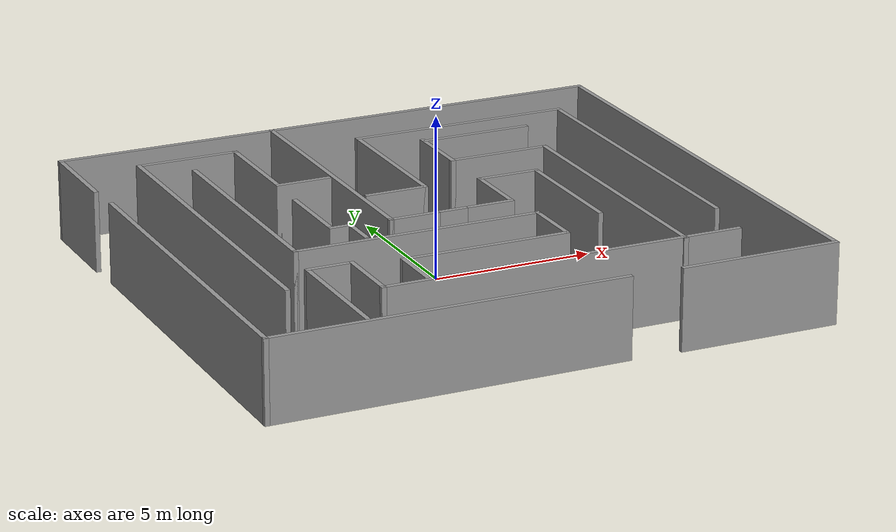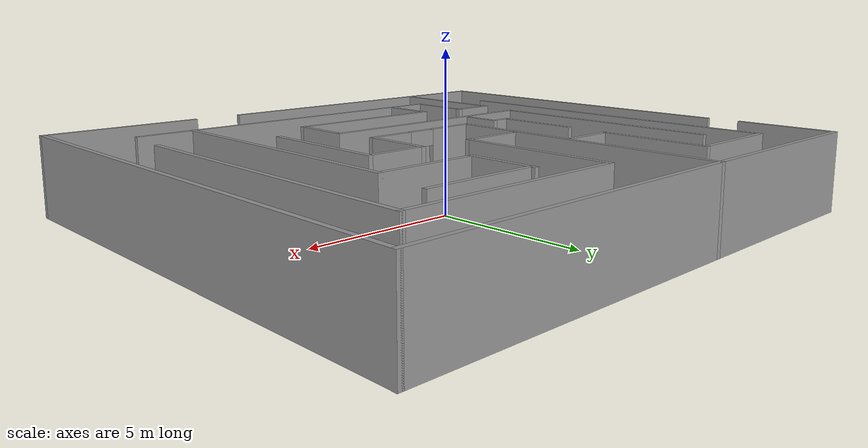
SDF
<?xml version='1.0'?>
<sdf version='1.7'>
  <model name='maze.world'>
    <pose>-0.047283 -0.120365 0 0 -0 0</pose>
    <link name='Wall_11'>
      <pose>0.053394 -0.925 0 0 -0 0</pose>
      <visual name='Wall_11_Visual_0'>
        <pose>-1.20024 0 1.25 0 -0 0</pose>
        <geometry>
          <box>
            <size>1.59951 0.15 2.5</size>
          </box>
        </geometry>
        <material>
          <script>
            <uri>file://media/materials/scripts/gazebo.material</uri>
            <name>Gazebo/Grey</name>
          </script>
          <ambient>1 1 1 1</ambient>
        </material>
        <meta>
          <layer>0</layer>
        </meta>
      </visual>
      <collision name='Wall_11_Collision_0'>
        <geometry>
          <box>
            <size>1.59951 0.15 2.5</size>
          </box>
        </geometry>
        <pose>-1.20024 0 1.25 0 -0 0</pose>
      </collision>
      <visual name='Wall_11_Visual_1'>
        <pose>1.24976 0 1.25 0 -0 0</pose>
        <geometry>
          <box>
            <size>1.50049 0.15 2.5</size>
          </box>
        </geometry>
        <material>
          <script>
            <uri>file://media/materials/scripts/gazebo.material</uri>
            <name>Gazebo/Grey</name>
          </script>
          <ambient>1 1 1 1</ambient>
        </material>
        <meta>
          <layer>0</layer>
        </meta>
      </visual>
      <collision name='Wall_11_Collision_1'>
        <geometry>
          <box>
            <size>1.50049 0.15 2.5</size>
          </box>
        </geometry>
        <pose>1.24976 0 1.25 0 -0 0</pose>
      </collision>
      <visual name='Wall_11_Visual_2'>
        <pose>0.049511 0 2.25 0 -0 0</pose>
        <geometry>
          <box>
            <size>0.9 0.15 0.5</size>
          </box>
        </geometry>
        <material>
          <script>
            <uri>file://media/materials/scripts/gazebo.material</uri>
            <name>Gazebo/Grey</name>
          </script>
          <ambient>1 1 1 1</ambient>
        </material>
        <meta>
          <layer>0</layer>
        </meta>
      </visual>
      <collision name='Wall_11_Collision_2'>
        <geometry>
          <box>
            <size>0.9 0.15 0.5</size>
          </box>
        </geometry>
        <pose>0.049511 0 2.25 0 -0 0</pose>
      </collision>
    </link>
    <link name='Wall_12'>
      <collision name='Wall_12_Collision'>
        <geometry>
          <box>
            <size>2.25 0.15 2.5</size>
          </box>
        </geometry>
        <pose>0 0 1.25 0 -0 0</pose>
      </collision>
      <visual name='Wall_12_Visual'>
        <pose>0 0 1.25 0 -0 0</pose>
        <geometry>
          <box>
            <size>2.25 0.15 2.5</size>
          </box>
        </geometry>
        <material>
          <script>
            <uri>file://media/materials/scripts/gazebo.material</uri>
            <name>Gazebo/Grey</name>
          </script>
          <ambient>1 1 1 1</ambient>
        </material>
        <meta>
          <layer>0</layer>
        </meta>
      </visual>
      <pose>1.97839 0.125 0 0 -0 1.5708</pose>
    </link>
    <link name='Wall_13'>
      <collision name='Wall_13_Collision'>
        <geometry>
          <box>
            <size>2 0.15 2.5</size>
          </box>
        </geometry>
        <pose>0 0 1.25 0 -0 0</pose>
      </collision>
      <visual name='Wall_13_Visual'>
        <pose>0 0 1.25 0 -0 0</pose>
        <geometry>
          <box>
            <size>2 0.15 2.5</size>
          </box>
        </geometry>
        <material>
          <script>
            <uri>file://media/materials/scripts/gazebo.material</uri>
            <name>Gazebo/Grey</name>
          </script>
          <ambient>1 1 1 1</ambient>
        </material>
        <meta>
          <layer>0</layer>
        </meta>
      </visual>
      <pose>2.90339 1.175 0 0 -0 0</pose>
    </link>
    <link name='Wall_14'>
      <collision name='Wall_14_Collision'>
        <geometry>
          <box>
            <size>4.25 0.15 2.5</size>
          </box>
        </geometry>
        <pose>0 0 1.25 0 -0 0</pose>
      </collision>
      <visual name='Wall_14_Visual'>
        <pose>0 0 1.25 0 -0 0</pose>
        <geometry>
          <box>
            <size>4.25 0.15 2.5</size>
          </box>
        </geometry>
        <material>
          <script>
            <uri>file://media/materials/scripts/gazebo.material</uri>
            <name>Gazebo/Grey</name>
          </script>
          <ambient>1 1 1 1</ambient>
        </material>
        <meta>
          <layer>0</layer>
        </meta>
      </visual>
      <pose>3.82839 -0.875 0 0 -0 -1.5708</pose>
    </link>
    <link name='Wall_16'>
      <collision name='Wall_16_Collision'>
        <geometry>
          <box>
            <size>9 0.15 2.5</size>
          </box>
        </geometry>
        <pose>0 0 1.25 0 -0 0</pose>
      </collision>
      <visual name='Wall_16_Visual'>
        <pose>0 0 1.25 0 -0 0</pose>
        <geometry>
          <box>
            <size>9 0.15 2.5</size>
          </box>
        </geometry>
        <material>
          <script>
            <uri>file://media/materials/scripts/gazebo.material</uri>
            <name>Gazebo/Grey</name>
          </script>
          <ambient>1 1 1 1</ambient>
        </material>
        <meta>
          <layer>0</layer>
        </meta>
      </visual>
      <pose>-1.87161 3.5 0 0 -0 1.5708</pose>
    </link>
    <link name='Wall_17'>
      <collision name='Wall_17_Collision'>
        <geometry>
          <box>
            <size>10.75 0.15 2.5</size>
          </box>
        </geometry>
        <pose>0 0 1.25 0 -0 0</pose>
      </collision>
      <visual name='Wall_17_Visual'>
        <pose>0 0 1.25 0 -0 0</pose>
        <geometry>
          <box>
            <size>10.75 0.15 2.5</size>
          </box>
        </geometry>
        <material>
          <script>
            <uri>file://media/materials/scripts/gazebo.material</uri>
            <name>Gazebo/Grey</name>
          </script>
          <ambient>1 1 1 1</ambient>
        </material>
        <meta>
          <layer>0</layer>
        </meta>
      </visual>
      <pose>3.42839 7.925 0 0 -0 0</pose>
    </link>
    <link name='Wall_18'>
      <collision name='Wall_18_Collision'>
        <geometry>
          <box>
            <size>16 0.15 2.5</size>
          </box>
        </geometry>
        <pose>0 0 1.25 0 -0 0</pose>
      </collision>
      <visual name='Wall_18_Visual'>
        <pose>0 0 1.25 0 -0 0</pose>
        <geometry>
          <box>
            <size>16 0.15 2.5</size>
          </box>
        </geometry>
        <material>
          <script>
            <uri>file://media/materials/scripts/gazebo.material</uri>
            <name>Gazebo/Grey</name>
          </script>
          <ambient>1 1 1 1</ambient>
        </material>
        <meta>
          <layer>0</layer>
        </meta>
      </visual>
      <pose>8.72839 0 0 0 -0 -1.5708</pose>
    </link>
    <link name='Wall_19'>
      <collision name='Wall_19_Collision'>
        <geometry>
          <box>
            <size>5 0.15 2.5</size>
          </box>
        </geometry>
        <pose>0 0 1.25 0 -0 0</pose>
      </collision>
      <visual name='Wall_19_Visual'>
        <pose>0 0 1.25 0 -0 0</pose>
        <geometry>
          <box>
            <size>5 0.15 2.5</size>
          </box>
        </geometry>
        <material>
          <script>
            <uri>file://media/materials/scripts/gazebo.material</uri>
            <name>Gazebo/Grey</name>
          </script>
          <ambient>1 1 1 1</ambient>
        </material>
        <meta>
          <layer>0</layer>
        </meta>
      </visual>
      <pose>6.30339 -7.925 0 0 -0 3.14159</pose>
    </link>
    <link name='Wall_22'>
      <collision name='Wall_22_Collision'>
        <geometry>
          <box>
            <size>11 0.15 2.5</size>
          </box>
        </geometry>
        <pose>0 0 1.25 0 -0 0</pose>
      </collision>
      <visual name='Wall_22_Visual'>
        <pose>0 0 1.25 0 -0 0</pose>
        <geometry>
          <box>
            <size>11 0.15 2.5</size>
          </box>
        </geometry>
        <material>
          <script>
            <uri>file://media/materials/scripts/gazebo.material</uri>
            <name>Gazebo/Grey</name>
          </script>
          <ambient>1 1 1 1</ambient>
        </material>
        <meta>
          <layer>0</layer>
        </meta>
      </visual>
      <pose>-3.23039 -7.86248 0 0 -0 3.14159</pose>
    </link>
    <link name='Wall_23'>
      <collision name='Wall_23_Collision'>
        <geometry>
          <box>
            <size>11.75 0.15 2.5</size>
          </box>
        </geometry>
        <pose>0 0 1.25 0 -0 0</pose>
      </collision>
      <visual name='Wall_23_Visual'>
        <pose>0 0 1.25 0 -0 0</pose>
        <geometry>
          <box>
            <size>11.75 0.15 2.5</size>
          </box>
        </geometry>
        <material>
          <script>
            <uri>file://media/materials/scripts/gazebo.material</uri>
            <name>Gazebo/Grey</name>
          </script>
          <ambient>1 1 1 1</ambient>
        </material>
        <meta>
          <layer>0</layer>
        </meta>
      </visual>
      <pose>-8.65539 -2.06248 0 0 -0 1.5708</pose>
    </link>
    <link name='Wall_25'>
      <collision name='Wall_25_Collision'>
        <geometry>
          <box>
            <size>3 0.15 2.5</size>
          </box>
        </geometry>
        <pose>0 0 1.25 0 -0 0</pose>
      </collision>
      <visual name='Wall_25_Visual'>
        <pose>0 0 1.25 0 -0 0</pose>
        <geometry>
          <box>
            <size>3 0.15 2.5</size>
          </box>
        </geometry>
        <material>
          <script>
            <uri>file://media/materials/scripts/gazebo.material</uri>
            <name>Gazebo/Grey</name>
          </script>
          <ambient>1 1 1 1</ambient>
        </material>
        <meta>
          <layer>0</layer>
        </meta>
      </visual>
      <pose>-8.7284 6.34648 0 0 -0 1.5708</pose>
    </link>
    <link name='Wall_27'>
      <collision name='Wall_27_Collision'>
        <geometry>
          <box>
            <size>7 0.15 2.5</size>
          </box>
        </geometry>
        <pose>0 0 1.25 0 -0 0</pose>
      </collision>
      <visual name='Wall_27_Visual'>
        <pose>0 0 1.25 0 -0 0</pose>
        <geometry>
          <box>
            <size>7 0.15 2.5</size>
          </box>
        </geometry>
        <material>
          <script>
            <uri>file://media/materials/scripts/gazebo.material</uri>
            <name>Gazebo/Grey</name>
          </script>
          <ambient>1 1 1 1</ambient>
        </material>
        <meta>
          <layer>0</layer>
        </meta>
      </visual>
      <pose>-5.29661 7.925 0 0 -0 3.14159</pose>
    </link>
    <link name='Wall_29'>
      <collision name='Wall_29_Collision'>
        <geometry>
          <box>
            <size>11.25 0.15 2.5</size>
          </box>
        </geometry>
        <pose>0 0 1.25 0 -0 0</pose>
      </collision>
      <visual name='Wall_29_Visual'>
        <pose>0 0 1.25 0 -0 0</pose>
        <geometry>
          <box>
            <size>11.25 0.15 2.5</size>
          </box>
        </geometry>
        <material>
          <script>
            <uri>file://media/materials/scripts/gazebo.material</uri>
            <name>Gazebo/Grey</name>
          </script>
          <ambient>1 1 1 1</ambient>
        </material>
        <meta>
          <layer>0</layer>
        </meta>
      </visual>
      <pose>1.25655 -5.75879 0 0 -0 3.14159</pose>
    </link>
    <link name='Wall_30'>
      <collision name='Wall_30_Collision'>
        <geometry>
          <box>
            <size>2.25 0.15 2.5</size>
          </box>
        </geometry>
        <pose>0 0 1.25 0 -0 0</pose>
      </collision>
      <visual name='Wall_30_Visual'>
        <pose>0 0 1.25 0 -0 0</pose>
        <geometry>
          <box>
            <size>2.25 0.15 2.5</size>
          </box>
        </geometry>
        <material>
          <script>
            <uri>file://media/materials/scripts/gazebo.material</uri>
            <name>Gazebo/Grey</name>
          </script>
          <ambient>1 1 1 1</ambient>
        </material>
        <meta>
          <layer>0</layer>
        </meta>
      </visual>
      <pose>-4.29345 -4.70879 0 0 -0 1.5708</pose>
    </link>
    <link name='Wall_32'>
      <collision name='Wall_32_Collision'>
        <geometry>
          <box>
            <size>7 0.15 2.5</size>
          </box>
        </geometry>
        <pose>0 0 1.25 0 -0 0</pose>
      </collision>
      <visual name='Wall_32_Visual'>
        <pose>0 0 1.25 0 -0 0</pose>
        <geometry>
          <box>
            <size>7 0.15 2.5</size>
          </box>
        </geometry>
        <material>
          <script>
            <uri>file://media/materials/scripts/gazebo.material</uri>
            <name>Gazebo/Grey</name>
          </script>
          <ambient>1 1 1 1</ambient>
        </material>
        <meta>
          <layer>0</layer>
        </meta>
      </visual>
      <pose>3.63729 6.09469 0 0 -0 0</pose>
    </link>
    <link name='Wall_33'>
      <collision name='Wall_33_Collision'>
        <geometry>
          <box>
            <size>10.25 0.15 2.5</size>
          </box>
        </geometry>
        <pose>0 0 1.25 0 -0 0</pose>
      </collision>
      <visual name='Wall_33_Visual'>
        <pose>0 0 1.25 0 -0 0</pose>
        <geometry>
          <box>
            <size>10.25 0.15 2.5</size>
          </box>
        </geometry>
        <material>
          <script>
            <uri>file://media/materials/scripts/gazebo.material</uri>
            <name>Gazebo/Grey</name>
          </script>
          <ambient>1 1 1 1</ambient>
        </material>
        <meta>
          <layer>0</layer>
        </meta>
      </visual>
      <pose>7.06229 1.04469 0 0 -0 -1.5708</pose>
    </link>
    <link name='Wall_36'>
      <collision name='Wall_36_Collision'>
        <geometry>
          <box>
            <size>5 0.15 2.5</size>
          </box>
        </geometry>
        <pose>0 0 1.25 0 -0 0</pose>
      </collision>
      <visual name='Wall_36_Visual'>
        <pose>0 0 1.25 0 -0 0</pose>
        <geometry>
          <box>
            <size>5 0.15 2.5</size>
          </box>
        </geometry>
        <material>
          <script>
            <uri>file://media/materials/scripts/gazebo.material</uri>
            <name>Gazebo/Grey</name>
          </script>
          <ambient>1 1 1 1</ambient>
        </material>
        <meta>
          <layer>0</layer>
        </meta>
      </visual>
      <pose>0.212287 3.66969 0 0 -0 -1.5708</pose>
    </link>
    <link name='Wall_37'>
      <collision name='Wall_37_Collision'>
        <geometry>
          <box>
            <size>2 0.15 2.5</size>
          </box>
        </geometry>
        <pose>0 0 1.25 0 -0 0</pose>
      </collision>
      <visual name='Wall_37_Visual'>
        <pose>0 0 1.25 0 -0 0</pose>
        <geometry>
          <box>
            <size>2 0.15 2.5</size>
          </box>
        </geometry>
        <material>
          <script>
            <uri>file://media/materials/scripts/gazebo.material</uri>
            <name>Gazebo/Grey</name>
          </script>
          <ambient>1 1 1 1</ambient>
        </material>
        <meta>
          <layer>0</layer>
        </meta>
      </visual>
      <pose>-0.712713 1.24469 0 0 -0 3.14159</pose>
    </link>
    <link name='Wall_39'>
      <collision name='Wall_39_Collision'>
        <geometry>
          <box>
            <size>3.25 0.15 2.5</size>
          </box>
        </geometry>
        <pose>0 0 1.25 0 -0 0</pose>
      </collision>
      <visual name='Wall_39_Visual'>
        <pose>0 0 1.25 0 -0 0</pose>
        <geometry>
          <box>
            <size>3.25 0.15 2.5</size>
          </box>
        </geometry>
        <material>
          <script>
            <uri>file://media/materials/scripts/gazebo.material</uri>
            <name>Gazebo/Grey</name>
          </script>
          <ambient>1 1 1 1</ambient>
        </material>
        <meta>
          <layer>0</layer>
        </meta>
      </visual>
      <pose>3.50685 3.04433 0 0 -0 0</pose>
    </link>
    <link name='Wall_40'>
      <collision name='Wall_40_Collision'>
        <geometry>
          <box>
            <size>9 0.15 2.5</size>
          </box>
        </geometry>
        <pose>0 0 1.25 0 -0 0</pose>
      </collision>
      <visual name='Wall_40_Visual'>
        <pose>0 0 1.25 0 -0 0</pose>
        <geometry>
          <box>
            <size>9 0.15 2.5</size>
          </box>
        </geometry>
        <material>
          <script>
            <uri>file://media/materials/scripts/gazebo.material</uri>
            <name>Gazebo/Grey</name>
          </script>
          <ambient>1 1 1 1</ambient>
        </material>
        <meta>
          <layer>0</layer>
        </meta>
      </visual>
      <pose>5.05685 -1.38067 0 0 -0 -1.5708</pose>
    </link>
    <link name='Wall_42'>
      <collision name='Wall_42_Collision'>
        <geometry>
          <box>
            <size>11.5 0.15 2.5</size>
          </box>
        </geometry>
        <pose>0 0 1.25 0 -0 0</pose>
      </collision>
      <visual name='Wall_42_Visual'>
        <pose>0 0 1.25 0 -0 0</pose>
        <geometry>
          <box>
            <size>11.5 0.15 2.5</size>
          </box>
        </geometry>
        <material>
          <script>
            <uri>file://media/materials/scripts/gazebo.material</uri>
            <name>Gazebo/Grey</name>
          </script>
          <ambient>1 1 1 1</ambient>
        </material>
        <meta>
          <layer>0</layer>
        </meta>
      </visual>
      <pose>-6.7532 0.848806 0 0 -0 1.5708</pose>
    </link>
    <link name='Wall_43'>
      <collision name='Wall_43_Collision'>
        <geometry>
          <box>
            <size>3.25 0.15 2.5</size>
          </box>
        </geometry>
        <pose>0 0 1.25 0 -0 0</pose>
      </collision>
      <visual name='Wall_43_Visual'>
        <pose>0 0 1.25 0 -0 0</pose>
        <geometry>
          <box>
            <size>3.25 0.15 2.5</size>
          </box>
        </geometry>
        <material>
          <script>
            <uri>file://media/materials/scripts/gazebo.material</uri>
            <name>Gazebo/Grey</name>
          </script>
          <ambient>1 1 1 1</ambient>
        </material>
        <meta>
          <layer>0</layer>
        </meta>
      </visual>
      <pose>-5.2032 6.52381 0 0 -0 0</pose>
    </link>
    <link name='Wall_44'>
      <collision name='Wall_44_Collision'>
        <geometry>
          <box>
            <size>3.5 0.15 2.5</size>
          </box>
        </geometry>
        <pose>0 0 1.25 0 -0 0</pose>
      </collision>
      <visual name='Wall_44_Visual'>
        <pose>0 0 1.25 0 -0 0</pose>
        <geometry>
          <box>
            <size>3.5 0.15 2.5</size>
          </box>
        </geometry>
        <material>
          <script>
            <uri>file://media/materials/scripts/gazebo.material</uri>
            <name>Gazebo/Grey</name>
          </script>
          <ambient>1 1 1 1</ambient>
        </material>
        <meta>
          <layer>0</layer>
        </meta>
      </visual>
      <pose>-3.6532 4.84881 0 0 -0 -1.5708</pose>
    </link>
    <link name='Wall_45'>
      <collision name='Wall_45_Collision'>
        <geometry>
          <box>
            <size>1.75 0.15 2.5</size>
          </box>
        </geometry>
        <pose>0 0 1.25 0 -0 0</pose>
      </collision>
      <visual name='Wall_45_Visual'>
        <pose>0 0 1.25 0 -0 0</pose>
        <geometry>
          <box>
            <size>1.75 0.15 2.5</size>
          </box>
        </geometry>
        <material>
          <script>
            <uri>file://media/materials/scripts/gazebo.material</uri>
            <name>Gazebo/Grey</name>
          </script>
          <ambient>1 1 1 1</ambient>
        </material>
        <meta>
          <layer>0</layer>
        </meta>
      </visual>
      <pose>-2.8532 3.17381 0 0 -0 0</pose>
    </link>
    <link name='Wall_48'>
      <collision name='Wall_48_Collision'>
        <geometry>
          <box>
            <size>1.5 0.15 2.5</size>
          </box>
        </geometry>
        <pose>0 0 1.25 0 -0 0</pose>
      </collision>
      <visual name='Wall_48_Visual'>
        <pose>0 0 1.25 0 -0 0</pose>
        <geometry>
          <box>
            <size>1.5 0.15 2.5</size>
          </box>
        </geometry>
        <material>
          <script>
            <uri>file://media/materials/scripts/gazebo.material</uri>
            <name>Gazebo/Grey</name>
          </script>
          <ambient>1 1 1 1</ambient>
        </material>
        <meta>
          <layer>0</layer>
        </meta>
      </visual>
      <pose>-4.96845 -3.65879 0 0 -0 3.14159</pose>
    </link>
    <link name='Wall_49'>
      <collision name='Wall_49_Collision'>
        <geometry>
          <box>
            <size>4.25 0.15 2.5</size>
          </box>
        </geometry>
        <pose>0 0 1.25 0 -0 0</pose>
      </collision>
      <visual name='Wall_49_Visual'>
        <pose>0 0 1.25 0 -0 0</pose>
        <geometry>
          <box>
            <size>4.25 0.15 2.5</size>
          </box>
        </geometry>
        <material>
          <script>
            <uri>file://media/materials/scripts/gazebo.material</uri>
            <name>Gazebo/Grey</name>
          </script>
          <ambient>1 1 1 1</ambient>
        </material>
        <meta>
          <layer>0</layer>
        </meta>
      </visual>
      <pose>-5.64345 -5.70879 0 0 -0 -1.5708</pose>
    </link>
    <link name='Wall_51'>
      <collision name='Wall_51_Collision'>
        <geometry>
          <box>
            <size>3.5 0.15 2.5</size>
          </box>
        </geometry>
        <pose>0 0 1.25 0 -0 0</pose>
      </collision>
      <visual name='Wall_51_Visual'>
        <pose>0 0 1.25 0 -0 0</pose>
        <geometry>
          <box>
            <size>3.5 0.15 2.5</size>
          </box>
        </geometry>
        <material>
          <script>
            <uri>file://media/materials/scripts/gazebo.material</uri>
            <name>Gazebo/Grey</name>
          </script>
          <ambient>1 1 1 1</ambient>
        </material>
        <meta>
          <layer>0</layer>
        </meta>
      </visual>
      <pose>3.70181 5.0382 0 0 -0 0</pose>
    </link>
    <link name='Wall_53'>
      <collision name='Wall_53_Collision'>
        <geometry>
          <box>
            <size>2.25 0.15 2.5</size>
          </box>
        </geometry>
        <pose>0 0 1.25 0 -0 0</pose>
      </collision>
      <visual name='Wall_53_Visual'>
        <pose>0 0 1.25 0 -0 0</pose>
        <geometry>
          <box>
            <size>2.25 0.15 2.5</size>
          </box>
        </geometry>
        <material>
          <script>
            <uri>file://media/materials/scripts/gazebo.material</uri>
            <name>Gazebo/Grey</name>
          </script>
          <ambient>1 1 1 1</ambient>
        </material>
        <meta>
          <layer>0</layer>
        </meta>
      </visual>
      <pose>1.95685 4.09433 0 0 -0 1.5708</pose>
    </link>
    <link name='Wall_55'>
      <collision name='Wall_55_Collision'>
        <geometry>
          <box>
            <size>7.75 0.15 2.5</size>
          </box>
        </geometry>
        <pose>0 0 1.25 0 -0 0</pose>
      </collision>
      <visual name='Wall_55_Visual'>
        <pose>0 0 1.25 0 -0 0</pose>
        <geometry>
          <box>
            <size>7.75 0.15 2.5</size>
          </box>
        </geometry>
        <material>
          <script>
            <uri>file://media/materials/scripts/gazebo.material</uri>
            <name>Gazebo/Grey</name>
          </script>
          <ambient>1 1 1 1</ambient>
        </material>
        <meta>
          <layer>0</layer>
        </meta>
      </visual>
      <pose>-5.38898 1.62298 0 0 -0 -1.5708</pose>
    </link>
    <link name='Wall_56'>
      <collision name='Wall_56_Collision'>
        <geometry>
          <box>
            <size>7.75 0.15 2.5</size>
          </box>
        </geometry>
        <pose>0 0 1.25 0 -0 0</pose>
      </collision>
      <visual name='Wall_56_Visual'>
        <pose>0 0 1.25 0 -0 0</pose>
        <geometry>
          <box>
            <size>7.75 0.15 2.5</size>
          </box>
        </geometry>
        <material>
          <script>
            <uri>file://media/materials/scripts/gazebo.material</uri>
            <name>Gazebo/Grey</name>
          </script>
          <ambient>1 1 1 1</ambient>
        </material>
        <meta>
          <layer>0</layer>
        </meta>
      </visual>
      <pose>-1.58898 -2.17702 0 0 -0 0</pose>
    </link>
    <link name='Wall_57'>
      <collision name='Wall_57_Collision'>
        <geometry>
          <box>
            <size>2 0.15 2.5</size>
          </box>
        </geometry>
        <pose>0 0 1.25 0 -0 0</pose>
      </collision>
      <visual name='Wall_57_Visual'>
        <pose>0 0 1.25 0 -0 0</pose>
        <geometry>
          <box>
            <size>2 0.15 2.5</size>
          </box>
        </geometry>
        <material>
          <script>
            <uri>file://media/materials/scripts/gazebo.material</uri>
            <name>Gazebo/Grey</name>
          </script>
          <ambient>1 1 1 1</ambient>
        </material>
        <meta>
          <layer>0</layer>
        </meta>
      </visual>
      <pose>2.21102 -3.10202 0 0 -0 -1.5708</pose>
    </link>
    <link name='Wall_58'>
      <collision name='Wall_58_Collision'>
        <geometry>
          <box>
            <size>5.25 0.15 2.5</size>
          </box>
        </geometry>
        <pose>0 0 1.25 0 -0 0</pose>
      </collision>
      <visual name='Wall_58_Visual'>
        <pose>0 0 1.25 0 -0 0</pose>
        <geometry>
          <box>
            <size>5.25 0.15 2.5</size>
          </box>
        </geometry>
        <material>
          <script>
            <uri>file://media/materials/scripts/gazebo.material</uri>
            <name>Gazebo/Grey</name>
          </script>
          <ambient>1 1 1 1</ambient>
        </material>
        <meta>
          <layer>0</layer>
        </meta>
      </visual>
      <pose>-0.338975 -4.02702 0 0 -0 3.14159</pose>
    </link>
    <link name='Wall_59'>
      <collision name='Wall_59_Collision'>
        <geometry>
          <box>
            <size>1.75 0.15 2.5</size>
          </box>
        </geometry>
        <pose>0 0 1.25 0 -0 0</pose>
      </collision>
      <visual name='Wall_59_Visual'>
        <pose>0 0 1.25 0 -0 0</pose>
        <geometry>
          <box>
            <size>1.75 0.15 2.5</size>
          </box>
        </geometry>
        <material>
          <script>
            <uri>file://media/materials/scripts/gazebo.material</uri>
            <name>Gazebo/Grey</name>
          </script>
          <ambient>1 1 1 1</ambient>
        </material>
        <meta>
          <layer>0</layer>
        </meta>
      </visual>
      <pose>-2.88897 -4.82702 0 0 -0 -1.5708</pose>
    </link>
    <link name='Wall_61'>
      <collision name='Wall_61_Collision'>
        <geometry>
          <box>
            <size>2.75 0.15 2.5</size>
          </box>
        </geometry>
        <pose>0 0 1.25 0 -0 0</pose>
      </collision>
      <visual name='Wall_61_Visual'>
        <pose>0 0 1.25 0 -0 0</pose>
        <geometry>
          <box>
            <size>2.75 0.15 2.5</size>
          </box>
        </geometry>
        <material>
          <script>
            <uri>file://media/materials/scripts/gazebo.material</uri>
            <name>Gazebo/Grey</name>
          </script>
          <ambient>1 1 1 1</ambient>
        </material>
        <meta>
          <layer>0</layer>
        </meta>
      </visual>
      <pose>-3.70993 0.450069 0 0 -0 -1.5708</pose>
    </link>
    <link name='Wall_62'>
      <collision name='Wall_62_Collision'>
        <geometry>
          <box>
            <size>0.75 0.15 2.5</size>
          </box>
        </geometry>
        <pose>0 0 1.25 0 -0 0</pose>
      </collision>
      <visual name='Wall_62_Visual'>
        <pose>0 0 1.25 0 -0 0</pose>
        <geometry>
          <box>
            <size>0.75 0.15 2.5</size>
          </box>
        </geometry>
        <material>
          <script>
            <uri>file://media/materials/scripts/gazebo.material</uri>
            <name>Gazebo/Grey</name>
          </script>
          <ambient>1 1 1 1</ambient>
        </material>
        <meta>
          <layer>0</layer>
        </meta>
      </visual>
      <pose>-3.40993 -0.849931 0 0 -0 0</pose>
    </link>
    <link name='Wall_63'>
      <collision name='Wall_63_Collision'>
        <geometry>
          <box>
            <size>1.25 0.15 2.5</size>
          </box>
        </geometry>
        <pose>0 0 1.25 0 -0 0</pose>
      </collision>
      <visual name='Wall_63_Visual'>
        <pose>0 0 1.25 0 -0 0</pose>
        <geometry>
          <box>
            <size>1.25 0.15 2.5</size>
          </box>
        </geometry>
        <material>
          <script>
            <uri>file://media/materials/scripts/gazebo.material</uri>
            <name>Gazebo/Grey</name>
          </script>
          <ambient>1 1 1 1</ambient>
        </material>
        <meta>
          <layer>0</layer>
        </meta>
      </visual>
      <pose>-3.10993 -1.39993 0 0 -0 -1.5708</pose>
    </link>
    <static>1</static>
  </model>
</sdf>
